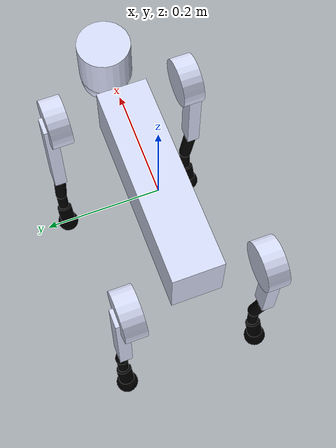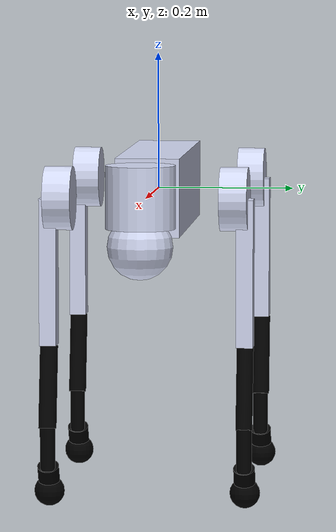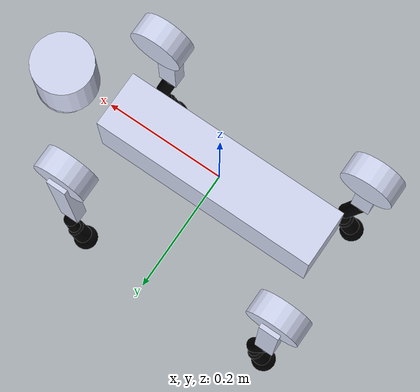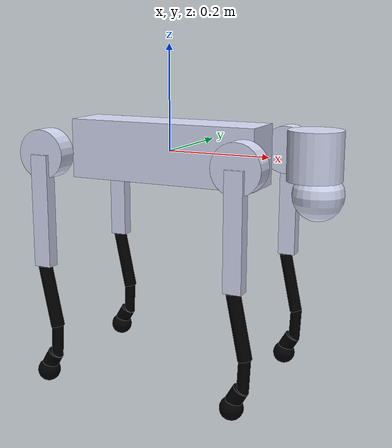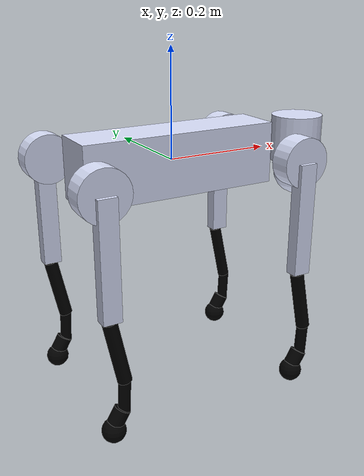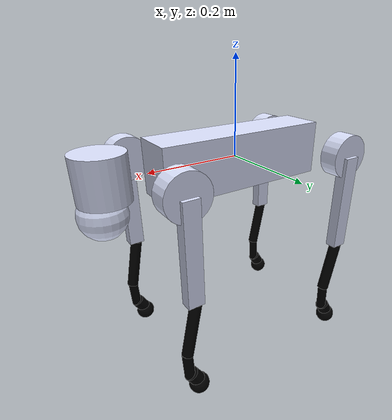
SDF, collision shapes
<sdf version='1.11'>
  <model name='go2_description'>
    <link name='base'>
      <inertial>
        <pose>0.020153063882401429 0 -0.0051089553510097526 0 0 0</pose>
        <mass>7.2790000000000017</mass>
        <inertia>
          <ixx>0.025737618948512481</ixx>
          <ixy>0.00012166</ixy>
          <ixz>0.001534235398809762</ixz>
          <iyy>0.1031209538931058</iyy>
          <iyz>-3.1199999999999999e-05</iyz>
          <izz>0.1128090234445933</izz>
        </inertia>
      </inertial>
      <collision name='base_collision'>
        <pose>0 0 0 0 0 0</pose>
        <geometry>
          <box>
            <size>0.37619999999999998 0.0935 0.114</size>
          </box>
        </geometry>
      </collision>
      <collision name='base_fixed_joint_lump__Head_upper_collision_1'>
        <pose>0.28499999999999998 0 0.01 0 0 0</pose>
        <geometry>
          <cylinder>
            <length>0.089999999999999997</length>
            <radius>0.050000000000000003</radius>
          </cylinder>
        </geometry>
      </collision>
      <collision name='base_fixed_joint_lump__Head_lower_collision_2'>
        <pose>0.29299999999999998 0 -0.059999999999999998 0 0 0</pose>
        <geometry>
          <sphere>
            <radius>0.047</radius>
          </sphere>
        </geometry>
      </collision>
      <visual name='base_visual'>
        <pose>0 0 0 0 0 0</pose>
        <geometry>
          <mesh>
            <scale>1 1 1</scale>
            <uri>model://go2_description/dae/base.dae</uri>
          </mesh>
        </geometry>
        <material>
          <diffuse>0.839631855 0.86553216 0.967837751 1</diffuse>
          <ambient>0.839631855 0.86553216 0.967837751 1</ambient>
        </material>
      </visual>
      <sensor name='lidar' type='gpu_lidar'>
        <pose>0.28945 0 -0.046825 0 2.8782 0</pose>
        <topic>lidar</topic>
        <gz_frame_id>radar</gz_frame_id>
        <update_rate>10</update_rate>
        <always_on>1</always_on>
        <lidar>
          <scan>
            <horizontal>
              <samples>360</samples>
              <resolution>1</resolution>
              <min_angle>-3.14159</min_angle>
              <max_angle>3.14159</max_angle>
            </horizontal>
            <vertical>
              <samples>18</samples>
              <resolution>1</resolution>
              <min_angle>0</min_angle>
              <max_angle>1.5708</max_angle>
            </vertical>
          </scan>
          <range>
            <min>0.05</min>
            <max>30</max>
            <resolution>0.01</resolution>
          </range>
          <noise>
            <type>gaussian</type>
            <mean>0</mean>
            <stddev>0.01</stddev>
          </noise>
        </lidar>
      </sensor>
      <sensor name='front_camera' type='camera'>
        <pose>0.32715 0 0.04297 0 0 0</pose>
        <topic>front_camera/image</topic>
        <gz_frame_id>front_camera</gz_frame_id>
        <update_rate>15</update_rate>
        <always_on>1</always_on>
        <camera>
          <horizontal_fov>1.5</horizontal_fov>
          <image>
            <width>640</width>
            <height>480</height>
            <format>R8G8B8</format>
          </image>
          <clip>
            <near>0.05</near>
            <far>30</far>
          </clip>
        </camera>
      </sensor>
    </link>
    <joint name='FL_hip_joint' type='revolute'>
      <pose relative_to='base'>0.19339999999999999 0.0465 0 0 0 0</pose>
      <parent>base</parent>
      <child>FL_hip</child>
      <axis>
        <xyz>1 0 0</xyz>
        <limit>
          <lower>-1.0471999999999999</lower>
          <upper>1.0471999999999999</upper>
          <effort>45.43</effort>
          <velocity>30.100000000000001</velocity>
        </limit>
        <dynamics><damping>0.0</damping><friction>0.01</friction>
          <spring_reference>0</spring_reference>
          <spring_stiffness>0</spring_stiffness>
        </dynamics>
      </axis>
    </joint>
    <link name='FL_hip'>
      <pose relative_to='FL_hip_joint'>0 0 0 0 0 0</pose>
      <inertial>
        <pose>-0.0047734028683181226 0.00169748370273794 -9.2816166883963517e-05 0 0 0</pose>
        <mass>0.76700000000000002</mass>
        <inertia>
          <ixx>0.00053999151781062584</ixx>
          <ixy>-2.1220993324641449e-06</ixy>
          <ixz>1.0653925501955671e-06</ixz>
          <iyy>0.00099813696478559337</iyy>
          <iyz>-1.4027352647979141e-06</iyz>
          <izz>0.00065828474786205991</izz>
        </inertia>
      </inertial>
      <collision name='FL_hip_collision'>
        <pose>0 0.080000000000000002 0 1.5707963267948959 0 0</pose>
        <geometry>
          <cylinder>
            <length>0.040000000000000001</length>
            <radius>0.045999999999999999</radius>
          </cylinder>
        </geometry>
      </collision>
      <visual name='FL_hip_visual'>
        <pose>0 0 0 0 0 0</pose>
        <geometry>
          <mesh>
            <scale>1 1 1</scale>
            <uri>model://go2_description/dae/hip.dae</uri>
          </mesh>
        </geometry>
        <material>
          <diffuse>0.839631855 0.86553216 0.967837751 1</diffuse>
          <ambient>0.839631855 0.86553216 0.967837751 1</ambient>
        </material>
      </visual>
    </link>
    <joint name='FL_thigh_joint' type='revolute'>
      <pose relative_to='FL_hip'>0 0.095500000000000002 0 0 0 0</pose>
      <parent>FL_hip</parent>
      <child>FL_thigh</child>
      <axis>
        <xyz>0 1 0</xyz>
        <limit>
          <lower>-1.5708</lower>
          <upper>3.4906999999999999</upper>
          <effort>45.43</effort>
          <velocity>30.100000000000001</velocity>
        </limit>
        <dynamics><damping>0.0</damping><friction>0.01</friction>
          <spring_reference>0</spring_reference>
          <spring_stiffness>0</spring_stiffness>
        </dynamics>
      </axis>
    </joint>
    <link name='FL_thigh'>
      <pose relative_to='FL_thigh_joint'>0 0 0 0 0 0</pose>
      <inertial>
        <pose>-0.003471780821917808 -0.02302074939564867 -0.03035487510072523 0 0 0</pose>
        <mass>1.2410000000000001</mass>
        <inertia>
          <ixx>0.0059963333412087023</ixx>
          <ixy>9.0305334356164388e-05</ixy>
          <ixz>-0.00029910392372602731</ixz>
          <iyy>0.0060013394099700237</iyy>
          <iyz>0.00083515091803384382</iyz>
          <izz>0.0010991471651674461</izz>
        </inertia>
      </inertial>
      <collision name='FL_thigh_collision'>
        <pose>0 0 -0.1065 0 1.5707963267948966 0</pose>
        <geometry>
          <box>
            <size>0.21299999999999999 0.024500000000000001 0.034000000000000002</size>
          </box>
        </geometry>
      </collision>
      <visual name='FL_thigh_visual'>
        <pose>0 0 0 0 0 0</pose>
        <geometry>
          <mesh>
            <scale>1 1 1</scale>
            <uri>model://go2_description/dae/thigh.dae</uri>
          </mesh>
        </geometry>
        <material>
          <diffuse>0.839631855 0.86553216 0.967837751 1</diffuse>
          <ambient>0.839631855 0.86553216 0.967837751 1</ambient>
        </material>
      </visual>
    </link>
    <joint name='FL_calf_joint' type='revolute'>
      <pose relative_to='FL_thigh'>0 0 -0.21299999999999999 0 0 0</pose>
      <parent>FL_thigh</parent>
      <child>FL_calf</child>
      <axis>
        <xyz>0 1 0</xyz>
        <limit>
          <lower>-2.7227000000000001</lower>
          <upper>0.05</upper>
          <effort>45.43</effort>
          <velocity>15.699999999999999</velocity>
        </limit>
        <dynamics><damping>0.0</damping><friction>0.01</friction>
          <spring_reference>0</spring_reference>
          <spring_stiffness>0</spring_stiffness>
        </dynamics>
      </axis>
    </joint>
    <link name='FL_calf'>
      <pose relative_to='FL_calf_joint'>0 0 0 0 0 0</pose>
      <inertial>
        <pose>0.0043501030927835041 -0.00077396907216494828 -0.13520618556701031 0 0 0</pose>
        <mass>0.19400000000000001</mass>
        <inertia>
          <ixx>0.001394581937371134</ixx>
          <ixy>5.0965402061855686e-07</ixy>
          <ixz>1.4759587628868399e-07</ixz>
          <iyy>0.001415505295175258</iyy>
          <iyz>1.1313958762886591e-05</iyz>
          <izz>4.3483727391752568e-05</izz>
        </inertia>
      </inertial>
      <collision name='FL_calf_collision'>
        <pose>0.0080000000000000002 0 -0.059999999999999998 0 -0.20999999999999999 0</pose>
        <geometry>
          <cylinder>
            <length>0.12</length>
            <radius>0.012</radius>
          </cylinder>
        </geometry>
      </collision>
      <collision name='FL_calflower_collision_1'>
        <pose>0.02 0 -0.14799999999999999 0 0.050000000000000003 0</pose>
        <geometry>
          <cylinder>
            <length>0.065000000000000002</length>
            <radius>0.010999999999999999</radius>
          </cylinder>
        </geometry>
      </collision>
      <collision name='FL_calflower1_collision_2'>
        <pose>0.0080133306252232039 0 -0.18745021872309189 0 0.53000000000000014 0</pose>
        <geometry>
          <cylinder>
            <length>0.029999999999999999</length>
            <radius>0.0155</radius>
          </cylinder>
        </geometry>
      </collision>
      <collision name='FL_calf_fixed_joint_lump__FL_foot_collision_3'>
        <pose>-0.002 0 -0.21299999999999999 0 0 0</pose>
        <geometry>
          <sphere>
            <radius>0.021999999999999999</radius>
          </sphere>
        </geometry>
      </collision>
      <visual name='FL_calf_visual'>
        <pose>0 0 0 0 0 0</pose>
        <geometry>
          <mesh>
            <scale>1 1 1</scale>
            <uri>model://go2_description/dae/calf.dae</uri>
          </mesh>
        </geometry>
        <material>
          <diffuse>0 0 0 1</diffuse>
          <ambient>0 0 0 1</ambient>
        </material>
      </visual>
      <visual name='FL_calf_fixed_joint_lump__FL_foot_visual_1'>
        <pose>0 0 -0.21299999999999999 0 0 0</pose>
        <geometry>
          <mesh>
            <scale>1 1 1</scale>
            <uri>model://go2_description/dae/foot.dae</uri>
          </mesh>
        </geometry>
        <material>
          <diffuse>0 0 0 1</diffuse>
          <ambient>0 0 0 1</ambient>
        </material>
      </visual>
    </link>
    <joint name='FR_hip_joint' type='revolute'>
      <pose relative_to='base'>0.19339999999999999 -0.0465 0 0 0 0</pose>
      <parent>base</parent>
      <child>FR_hip</child>
      <axis>
        <xyz>1 0 0</xyz>
        <limit>
          <lower>-1.0471999999999999</lower>
          <upper>1.0471999999999999</upper>
          <effort>45.43</effort>
          <velocity>30.100000000000001</velocity>
        </limit>
        <dynamics><damping>0.0</damping><friction>0.01</friction>
          <spring_reference>0</spring_reference>
          <spring_stiffness>0</spring_stiffness>
        </dynamics>
      </axis>
    </joint>
    <link name='FR_hip'>
      <pose relative_to='FR_hip_joint'>0 0 0 0 0 0</pose>
      <inertial>
        <pose>-0.0047734028683181226 -0.00169748370273794 -9.2816166883963517e-05 0 0 0</pose>
        <mass>0.76700000000000002</mass>
        <inertia>
          <ixx>0.00053999151781062584</ixx>
          <ixy>2.1220993324641449e-06</ixy>
          <ixz>1.0653925501955671e-06</ixz>
          <iyy>0.00099813696478559337</iyy>
          <iyz>1.4027352647979141e-06</iyz>
          <izz>0.00065828474786205991</izz>
        </inertia>
      </inertial>
      <collision name='FR_hip_collision'>
        <pose>0 -0.080000000000000002 0 1.5707963267948959 0 0</pose>
        <geometry>
          <cylinder>
            <length>0.040000000000000001</length>
            <radius>0.045999999999999999</radius>
          </cylinder>
        </geometry>
      </collision>
      <visual name='FR_hip_visual'>
        <pose>0 0 0 3.1415000000000002 0 0</pose>
        <geometry>
          <mesh>
            <scale>1 1 1</scale>
            <uri>model://go2_description/dae/hip.dae</uri>
          </mesh>
        </geometry>
        <material>
          <diffuse>0.839631855 0.86553216 0.967837751 1</diffuse>
          <ambient>0.839631855 0.86553216 0.967837751 1</ambient>
        </material>
      </visual>
    </link>
    <joint name='FR_thigh_joint' type='revolute'>
      <pose relative_to='FR_hip'>0 -0.095500000000000002 0 0 0 0</pose>
      <parent>FR_hip</parent>
      <child>FR_thigh</child>
      <axis>
        <xyz>0 1 0</xyz>
        <limit>
          <lower>-1.5708</lower>
          <upper>3.4906999999999999</upper>
          <effort>45.43</effort>
          <velocity>30.100000000000001</velocity>
        </limit>
        <dynamics><damping>0.0</damping><friction>0.01</friction>
          <spring_reference>0</spring_reference>
          <spring_stiffness>0</spring_stiffness>
        </dynamics>
      </axis>
    </joint>
    <link name='FR_thigh'>
      <pose relative_to='FR_thigh_joint'>0 0 0 0 0 0</pose>
      <inertial>
        <pose>-0.003471780821917808 0.02302074939564867 -0.03035487510072523 0 0 0</pose>
        <mass>1.2410000000000001</mass>
        <inertia>
          <ixx>0.0059963333412087023</ixx>
          <ixy>-9.0305334356164388e-05</ixy>
          <ixz>-0.00029910392372602731</ixz>
          <iyy>0.0060013394099700237</iyy>
          <iyz>-0.00083515091803384382</iyz>
          <izz>0.0010991471651674461</izz>
        </inertia>
      </inertial>
      <collision name='FR_thigh_collision'>
        <pose>0 0 -0.1065 0 1.5707963267948966 0</pose>
        <geometry>
          <box>
            <size>0.21299999999999999 0.024500000000000001 0.034000000000000002</size>
          </box>
        </geometry>
      </collision>
      <visual name='FR_thigh_visual'>
        <pose>0 0 0 0 0 0</pose>
        <geometry>
          <mesh>
            <scale>1 1 1</scale>
            <uri>model://go2_description/dae/thigh_mirror.dae</uri>
          </mesh>
        </geometry>
        <material>
          <diffuse>0.839631855 0.86553216 0.967837751 1</diffuse>
          <ambient>0.839631855 0.86553216 0.967837751 1</ambient>
        </material>
      </visual>
    </link>
    <joint name='FR_calf_joint' type='revolute'>
      <pose relative_to='FR_thigh'>0 0 -0.21299999999999999 0 0 0</pose>
      <parent>FR_thigh</parent>
      <child>FR_calf</child>
      <axis>
        <xyz>0 1 0</xyz>
        <limit>
          <lower>-2.7227000000000001</lower>
          <upper>0.05</upper>
          <effort>45.43</effort>
          <velocity>15.699999999999999</velocity>
        </limit>
        <dynamics><damping>0.0</damping><friction>0.01</friction>
          <spring_reference>0</spring_reference>
          <spring_stiffness>0</spring_stiffness>
        </dynamics>
      </axis>
    </joint>
    <link name='FR_calf'>
      <pose relative_to='FR_calf_joint'>0 0 0 0 0 0</pose>
      <inertial>
        <pose>0.0043501030927835041 0.00077396907216494828 -0.13520618556701031 0 0 0</pose>
        <mass>0.19400000000000001</mass>
        <inertia>
          <ixx>0.001394581937371134</ixx>
          <ixy>-5.0965402061855686e-07</ixy>
          <ixz>1.4759587628868399e-07</ixz>
          <iyy>0.001415505295175258</iyy>
          <iyz>-1.1313958762886591e-05</iyz>
          <izz>4.3483727391752568e-05</izz>
        </inertia>
      </inertial>
      <collision name='FR_calf_collision'>
        <pose>0.01 0 -0.059999999999999998 0 -0.20000000000000004 0</pose>
        <geometry>
          <cylinder>
            <length>0.12</length>
            <radius>0.012999999999999999</radius>
          </cylinder>
        </geometry>
      </collision>
      <collision name='FR_calflower_collision_1'>
        <pose>0.02 0 -0.14799999999999999 0 0.050000000000000003 0</pose>
        <geometry>
          <cylinder>
            <length>0.065000000000000002</length>
            <radius>0.010999999999999999</radius>
          </cylinder>
        </geometry>
      </collision>
      <collision name='FR_calflower1_collision_2'>
        <pose>0.0080133306252232039 0 -0.18745021872309189 0 0.53000000000000014 0</pose>
        <geometry>
          <cylinder>
            <length>0.029999999999999999</length>
            <radius>0.0155</radius>
          </cylinder>
        </geometry>
      </collision>
      <collision name='FR_calf_fixed_joint_lump__FR_foot_collision_3'>
        <pose>-0.002 0 -0.21299999999999999 0 0 0</pose>
        <geometry>
          <sphere>
            <radius>0.021999999999999999</radius>
          </sphere>
        </geometry>
      </collision>
      <visual name='FR_calf_visual'>
        <pose>0 0 0 0 0 0</pose>
        <geometry>
          <mesh>
            <scale>1 1 1</scale>
            <uri>model://go2_description/dae/calf_mirror.dae</uri>
          </mesh>
        </geometry>
        <material>
          <diffuse>0 0 0 1</diffuse>
          <ambient>0 0 0 1</ambient>
        </material>
      </visual>
      <visual name='FR_calf_fixed_joint_lump__FR_foot_visual_1'>
        <pose>0 0 -0.21299999999999999 0 0 0</pose>
        <geometry>
          <mesh>
            <scale>1 1 1</scale>
            <uri>model://go2_description/dae/foot.dae</uri>
          </mesh>
        </geometry>
        <material>
          <diffuse>0 0 0 1</diffuse>
          <ambient>0 0 0 1</ambient>
        </material>
      </visual>
    </link>
    <joint name='RL_hip_joint' type='revolute'>
      <pose relative_to='base'>-0.19339999999999999 0.0465 0 0 0 0</pose>
      <parent>base</parent>
      <child>RL_hip</child>
      <axis>
        <xyz>1 0 0</xyz>
        <limit>
          <lower>-1.0471999999999999</lower>
          <upper>1.0471999999999999</upper>
          <effort>45.43</effort>
          <velocity>30.100000000000001</velocity>
        </limit>
        <dynamics><damping>0.0</damping><friction>0.01</friction>
          <spring_reference>0</spring_reference>
          <spring_stiffness>0</spring_stiffness>
        </dynamics>
      </axis>
    </joint>
    <link name='RL_hip'>
      <pose relative_to='RL_hip_joint'>0 0 0 0 0 0</pose>
      <inertial>
        <pose>0.0047734028683181226 0.00169748370273794 -9.2816166883963517e-05 0 0 0</pose>
        <mass>0.76700000000000002</mass>
        <inertia>
          <ixx>0.00053999151781062584</ixx>
          <ixy>2.1220993324641449e-06</ixy>
          <ixz>-1.0653925501955671e-06</ixz>
          <iyy>0.00099813696478559337</iyy>
          <iyz>-1.4027352647979141e-06</iyz>
          <izz>0.00065828474786205991</izz>
        </inertia>
      </inertial>
      <collision name='RL_hip_collision'>
        <pose>0 0.080000000000000002 0 1.5707963267948959 0 0</pose>
        <geometry>
          <cylinder>
            <length>0.040000000000000001</length>
            <radius>0.045999999999999999</radius>
          </cylinder>
        </geometry>
      </collision>
      <visual name='RL_hip_visual'>
        <pose>0 0 0 3.1415926535897931 9.265358979305727e-05 3.1415926535897931</pose>
        <geometry>
          <mesh>
            <scale>1 1 1</scale>
            <uri>model://go2_description/dae/hip.dae</uri>
          </mesh>
        </geometry>
        <material>
          <diffuse>0.839631855 0.86553216 0.967837751 1</diffuse>
          <ambient>0.839631855 0.86553216 0.967837751 1</ambient>
        </material>
      </visual>
    </link>
    <joint name='RL_thigh_joint' type='revolute'>
      <pose relative_to='RL_hip'>0 0.095500000000000002 0 0 0 0</pose>
      <parent>RL_hip</parent>
      <child>RL_thigh</child>
      <axis>
        <xyz>0 1 0</xyz>
        <limit>
          <lower>-0.52359999999999995</lower>
          <upper>4.5378999999999996</upper>
          <effort>45.43</effort>
          <velocity>30.100000000000001</velocity>
        </limit>
        <dynamics><damping>0.0</damping><friction>0.01</friction>
          <spring_reference>0</spring_reference>
          <spring_stiffness>0</spring_stiffness>
        </dynamics>
      </axis>
    </joint>
    <link name='RL_thigh'>
      <pose relative_to='RL_thigh_joint'>0 0 0 0 0 0</pose>
      <inertial>
        <pose>-0.003471780821917808 -0.02302074939564867 -0.03035487510072523 0 0 0</pose>
        <mass>1.2410000000000001</mass>
        <inertia>
          <ixx>0.0059963333412087023</ixx>
          <ixy>9.0305334356164388e-05</ixy>
          <ixz>-0.00029910392372602731</ixz>
          <iyy>0.0060013394099700237</iyy>
          <iyz>0.00083515091803384382</iyz>
          <izz>0.0010991471651674461</izz>
        </inertia>
      </inertial>
      <collision name='RL_thigh_collision'>
        <pose>0 0 -0.1065 0 1.5707963267948966 0</pose>
        <geometry>
          <box>
            <size>0.21299999999999999 0.024500000000000001 0.034000000000000002</size>
          </box>
        </geometry>
      </collision>
      <visual name='RL_thigh_visual'>
        <pose>0 0 0 0 0 0</pose>
        <geometry>
          <mesh>
            <scale>1 1 1</scale>
            <uri>model://go2_description/dae/thigh.dae</uri>
          </mesh>
        </geometry>
        <material>
          <diffuse>0.839631855 0.86553216 0.967837751 1</diffuse>
          <ambient>0.839631855 0.86553216 0.967837751 1</ambient>
        </material>
      </visual>
    </link>
    <joint name='RL_calf_joint' type='revolute'>
      <pose relative_to='RL_thigh'>0 0 -0.21299999999999999 0 0 0</pose>
      <parent>RL_thigh</parent>
      <child>RL_calf</child>
      <axis>
        <xyz>0 1 0</xyz>
        <limit>
          <lower>-2.7227000000000001</lower>
          <upper>0.05</upper>
          <effort>45.43</effort>
          <velocity>15.699999999999999</velocity>
        </limit>
        <dynamics><damping>0.0</damping><friction>0.01</friction>
          <spring_reference>0</spring_reference>
          <spring_stiffness>0</spring_stiffness>
        </dynamics>
      </axis>
    </joint>
    <link name='RL_calf'>
      <pose relative_to='RL_calf_joint'>0 0 0 0 0 0</pose>
      <inertial>
        <pose>0.0043501030927835041 -0.00077396907216494828 -0.13520618556701031 0 0 0</pose>
        <mass>0.19400000000000001</mass>
        <inertia>
          <ixx>0.001394581937371134</ixx>
          <ixy>5.0965402061855686e-07</ixy>
          <ixz>1.4759587628868399e-07</ixz>
          <iyy>0.001415505295175258</iyy>
          <iyz>1.1313958762886591e-05</iyz>
          <izz>4.3483727391752568e-05</izz>
        </inertia>
      </inertial>
      <collision name='RL_calf_collision'>
        <pose>0.01 0 -0.059999999999999998 0 -0.20000000000000004 0</pose>
        <geometry>
          <cylinder>
            <length>0.12</length>
            <radius>0.012999999999999999</radius>
          </cylinder>
        </geometry>
      </collision>
      <collision name='RL_calflower_collision_1'>
        <pose>0.02 0 -0.14799999999999999 0 0.050000000000000003 0</pose>
        <geometry>
          <cylinder>
            <length>0.065000000000000002</length>
            <radius>0.010999999999999999</radius>
          </cylinder>
        </geometry>
      </collision>
      <collision name='RL_calflower1_collision_2'>
        <pose>0.0080133306252232039 0 -0.18745021872309189 0 0.53000000000000014 0</pose>
        <geometry>
          <cylinder>
            <length>0.029999999999999999</length>
            <radius>0.0155</radius>
          </cylinder>
        </geometry>
      </collision>
      <collision name='RL_calf_fixed_joint_lump__RL_foot_collision_3'>
        <pose>-0.002 0 -0.21299999999999999 0 0 0</pose>
        <geometry>
          <sphere>
            <radius>0.021999999999999999</radius>
          </sphere>
        </geometry>
      </collision>
      <visual name='RL_calf_visual'>
        <pose>0 0 0 0 0 0</pose>
        <geometry>
          <mesh>
            <scale>1 1 1</scale>
            <uri>model://go2_description/dae/calf.dae</uri>
          </mesh>
        </geometry>
        <material>
          <diffuse>0 0 0 1</diffuse>
          <ambient>0 0 0 1</ambient>
        </material>
      </visual>
      <visual name='RL_calf_fixed_joint_lump__RL_foot_visual_1'>
        <pose>0 0 -0.21299999999999999 0 0 0</pose>
        <geometry>
          <mesh>
            <scale>1 1 1</scale>
            <uri>model://go2_description/dae/foot.dae</uri>
          </mesh>
        </geometry>
        <material>
          <diffuse>0 0 0 1</diffuse>
          <ambient>0 0 0 1</ambient>
        </material>
      </visual>
    </link>
    <joint name='RR_hip_joint' type='revolute'>
      <pose relative_to='base'>-0.19339999999999999 -0.0465 0 0 0 0</pose>
      <parent>base</parent>
      <child>RR_hip</child>
      <axis>
        <xyz>1 0 0</xyz>
        <limit>
          <lower>-1.0471999999999999</lower>
          <upper>1.0471999999999999</upper>
          <effort>45.43</effort>
          <velocity>30.100000000000001</velocity>
        </limit>
        <dynamics><damping>0.0</damping><friction>0.01</friction>
          <spring_reference>0</spring_reference>
          <spring_stiffness>0</spring_stiffness>
        </dynamics>
      </axis>
    </joint>
    <link name='RR_hip'>
      <pose relative_to='RR_hip_joint'>0 0 0 0 0 0</pose>
      <inertial>
        <pose>0.0047734028683181226 -0.00169748370273794 -9.2816166883963517e-05 0 0 0</pose>
        <mass>0.76700000000000002</mass>
        <inertia>
          <ixx>0.00053999151781062584</ixx>
          <ixy>-2.1220993324641449e-06</ixy>
          <ixz>-1.0653925501955671e-06</ixz>
          <iyy>0.00099813696478559337</iyy>
          <iyz>1.4027352647979141e-06</iyz>
          <izz>0.00065828474786205991</izz>
        </inertia>
      </inertial>
      <collision name='RR_hip_collision'>
        <pose>0 -0.080000000000000002 0 1.5707963267948959 0 0</pose>
        <geometry>
          <cylinder>
            <length>0.040000000000000001</length>
            <radius>0.045999999999999999</radius>
          </cylinder>
        </geometry>
      </collision>
      <visual name='RR_hip_visual'>
        <pose>0 0 0 -9.2653589793057257e-05 9.2653589793057284e-05 3.1415926535897931</pose>
        <geometry>
          <mesh>
            <scale>1 1 1</scale>
            <uri>model://go2_description/dae/hip.dae</uri>
          </mesh>
        </geometry>
        <material>
          <diffuse>0.839631855 0.86553216 0.967837751 1</diffuse>
          <ambient>0.839631855 0.86553216 0.967837751 1</ambient>
        </material>
      </visual>
    </link>
    <joint name='RR_thigh_joint' type='revolute'>
      <pose relative_to='RR_hip'>0 -0.095500000000000002 0 0 0 0</pose>
      <parent>RR_hip</parent>
      <child>RR_thigh</child>
      <axis>
        <xyz>0 1 0</xyz>
        <limit>
          <lower>-0.52359999999999995</lower>
          <upper>4.5378999999999996</upper>
          <effort>45.43</effort>
          <velocity>30.100000000000001</velocity>
        </limit>
        <dynamics><damping>0.0</damping><friction>0.01</friction>
          <spring_reference>0</spring_reference>
          <spring_stiffness>0</spring_stiffness>
        </dynamics>
      </axis>
    </joint>
    <link name='RR_thigh'>
      <pose relative_to='RR_thigh_joint'>0 0 0 0 0 0</pose>
      <inertial>
        <pose>-0.003471780821917808 0.02302074939564867 -0.03035487510072523 0 0 0</pose>
        <mass>1.2410000000000001</mass>
        <inertia>
          <ixx>0.0059963333412087023</ixx>
          <ixy>-9.0305334356164388e-05</ixy>
          <ixz>-0.00029910392372602731</ixz>
          <iyy>0.0060013394099700237</iyy>
          <iyz>-0.00083515091803384382</iyz>
          <izz>0.0010991471651674461</izz>
        </inertia>
      </inertial>
      <collision name='RR_thigh_collision'>
        <pose>0 0 -0.1065 0 1.5707963267948966 0</pose>
        <geometry>
          <box>
            <size>0.21299999999999999 0.024500000000000001 0.034000000000000002</size>
          </box>
        </geometry>
      </collision>
      <visual name='RR_thigh_visual'>
        <pose>0 0 0 0 0 0</pose>
        <geometry>
          <mesh>
            <scale>1 1 1</scale>
            <uri>model://go2_description/dae/thigh_mirror.dae</uri>
          </mesh>
        </geometry>
        <material>
          <diffuse>0.839631855 0.86553216 0.967837751 1</diffuse>
          <ambient>0.839631855 0.86553216 0.967837751 1</ambient>
        </material>
      </visual>
    </link>
    <joint name='RR_calf_joint' type='revolute'>
      <pose relative_to='RR_thigh'>0 0 -0.21299999999999999 0 0 0</pose>
      <parent>RR_thigh</parent>
      <child>RR_calf</child>
      <axis>
        <xyz>0 1 0</xyz>
        <limit>
          <lower>-2.7227000000000001</lower>
          <upper>0.05</upper>
          <effort>45.43</effort>
          <velocity>15.699999999999999</velocity>
        </limit>
        <dynamics><damping>0.0</damping><friction>0.01</friction>
          <spring_reference>0</spring_reference>
          <spring_stiffness>0</spring_stiffness>
        </dynamics>
      </axis>
    </joint>
    <link name='RR_calf'>
      <pose relative_to='RR_calf_joint'>0 0 0 0 0 0</pose>
      <inertial>
        <pose>0.0043501030927835041 0.00077396907216494828 -0.13520618556701031 0 0 0</pose>
        <mass>0.19400000000000001</mass>
        <inertia>
          <ixx>0.001394581937371134</ixx>
          <ixy>-5.0965402061855686e-07</ixy>
          <ixz>1.4759587628868399e-07</ixz>
          <iyy>0.001415505295175258</iyy>
          <iyz>-1.1313958762886591e-05</iyz>
          <izz>4.3483727391752568e-05</izz>
        </inertia>
      </inertial>
      <collision name='RR_calf_collision'>
        <pose>0.01 0 -0.059999999999999998 0 -0.20000000000000004 0</pose>
        <geometry>
          <cylinder>
            <length>0.12</length>
            <radius>0.012999999999999999</radius>
          </cylinder>
        </geometry>
      </collision>
      <collision name='RR_calflower_collision_1'>
        <pose>0.02 0 -0.14799999999999999 0 0.050000000000000003 0</pose>
        <geometry>
          <cylinder>
            <length>0.065000000000000002</length>
            <radius>0.010999999999999999</radius>
          </cylinder>
        </geometry>
      </collision>
      <collision name='RR_calflower1_collision_2'>
        <pose>0.0080133306252232039 0 -0.18745021872309189 0 0.53000000000000014 0</pose>
        <geometry>
          <cylinder>
            <length>0.029999999999999999</length>
            <radius>0.0155</radius>
          </cylinder>
        </geometry>
      </collision>
      <collision name='RR_calf_fixed_joint_lump__RR_foot_collision_3'>
        <pose>-0.002 0 -0.21299999999999999 0 0 0</pose>
        <geometry>
          <sphere>
            <radius>0.021999999999999999</radius>
          </sphere>
        </geometry>
      </collision>
      <visual name='RR_calf_visual'>
        <pose>0 0 0 0 0 0</pose>
        <geometry>
          <mesh>
            <scale>1 1 1</scale>
            <uri>model://go2_description/dae/calf_mirror.dae</uri>
          </mesh>
        </geometry>
        <material>
          <diffuse>0 0 0 1</diffuse>
          <ambient>0 0 0 1</ambient>
        </material>
      </visual>
      <visual name='RR_calf_fixed_joint_lump__RR_foot_visual_1'>
        <pose>0 0 -0.21299999999999999 0 0 0</pose>
        <geometry>
          <mesh>
            <scale>1 1 1</scale>
            <uri>model://go2_description/dae/foot.dae</uri>
          </mesh>
        </geometry>
        <material>
          <diffuse>0 0 0 1</diffuse>
          <ambient>0 0 0 1</ambient>
        </material>
      </visual>
    </link>
    <frame name='FL_hip_rotor_joint' attached_to='base'>
      <pose>0.11215 0.04675 0 0 0 0</pose>
    </frame>
    <frame name='FL_hip_rotor' attached_to='FL_hip_rotor_joint'>
      <pose>0 0 0 0 0 0</pose>
    </frame>
    <frame name='FR_hip_rotor_joint' attached_to='base'>
      <pose>0.11215 -0.04675 0 0 0 0</pose>
    </frame>
    <frame name='FR_hip_rotor' attached_to='FR_hip_rotor_joint'>
      <pose>0 0 0 0 0 0</pose>
    </frame>
    <frame name='Head_lower_joint' attached_to='Head_upper'>
      <pose>0.0080000000000000002 0 -0.070000000000000007 0 0 0</pose>
    </frame>
    <frame name='Head_lower' attached_to='Head_lower_joint'>
      <pose>0 0 0 0 0 0</pose>
    </frame>
    <frame name='Head_upper_joint' attached_to='base'>
      <pose>0.28499999999999998 0 0.01 0 0 0</pose>
    </frame>
    <frame name='Head_upper' attached_to='Head_upper_joint'>
      <pose>0 0 0 0 0 0</pose>
    </frame>
    <frame name='RL_hip_rotor_joint' attached_to='base'>
      <pose>-0.11215 0.04675 0 0 0 0</pose>
    </frame>
    <frame name='RL_hip_rotor' attached_to='RL_hip_rotor_joint'>
      <pose>0 0 0 0 0 0</pose>
    </frame>
    <frame name='RR_hip_rotor_joint' attached_to='base'>
      <pose>-0.11215 -0.04675 0 0 0 0</pose>
    </frame>
    <frame name='RR_hip_rotor' attached_to='RR_hip_rotor_joint'>
      <pose>0 0 0 0 0 0</pose>
    </frame>
    <frame name='front_camera_joint' attached_to='base'>
      <pose>0.32715 -3.0000000000000001e-05 0.042970000000000001 0 0 0</pose>
    </frame>
    <frame name='front_camera' attached_to='front_camera_joint'>
      <pose>0 0 0 0 0 0</pose>
    </frame>
    <frame name='imu_joint' attached_to='base'>
      <pose>-0.025569999999999999 0 0.042320000000000003 0 0 0</pose>
    </frame>
    <frame name='imu' attached_to='imu_joint'>
      <pose>0 0 0 0 0 0</pose>
    </frame>
    <frame name='radar_joint' attached_to='base'>
      <pose>0.28944999999999999 0 -0.046824999999999999 3.1415926535897931 0.26339265358979325 3.1415926535897931</pose>
    </frame>
    <frame name='radar' attached_to='radar_joint'>
      <pose>0 0 0 0 0 0</pose>
    </frame>
    <frame name='FL_thigh_rotor_joint' attached_to='FL_hip'>
      <pose>0 -0.00014999999999999999 0 0 0 0</pose>
    </frame>
    <frame name='FL_thigh_rotor' attached_to='FL_thigh_rotor_joint'>
      <pose>0 0 0 0 0 0</pose>
    </frame>
    <frame name='FL_calf_rotor_joint' attached_to='FL_thigh'>
      <pose>0 -0.032349999999999997 0 0 0 0</pose>
    </frame>
    <frame name='FL_calf_rotor' attached_to='FL_calf_rotor_joint'>
      <pose>0 0 0 0 0 0</pose>
    </frame>
    <frame name='FL_calflower1_joint' attached_to='FL_calflower'>
      <pose>-0.01 0 -0.040000000000000001 0 0.4800000000000002 0</pose>
    </frame>
    <frame name='FL_calflower1' attached_to='FL_calflower1_joint'>
      <pose>0 0 0 0 0 0</pose>
    </frame>
    <frame name='FL_calflower_joint' attached_to='FL_calf'>
      <pose>0.02 0 -0.14799999999999999 0 0.050000000000000003 0</pose>
    </frame>
    <frame name='FL_calflower' attached_to='FL_calflower_joint'>
      <pose>0 0 0 0 0 0</pose>
    </frame>
    <frame name='FL_foot_joint' attached_to='FL_calf'>
      <pose>0 0 -0.21299999999999999 0 0 0</pose>
    </frame>
    <frame name='FL_foot' attached_to='FL_foot_joint'>
      <pose>0 0 0 0 0 0</pose>
    </frame>
    <frame name='FR_thigh_rotor_joint' attached_to='FR_hip'>
      <pose>0 0.00014999999999999999 0 0 0 0</pose>
    </frame>
    <frame name='FR_thigh_rotor' attached_to='FR_thigh_rotor_joint'>
      <pose>0 0 0 0 0 0</pose>
    </frame>
    <frame name='FR_calf_rotor_joint' attached_to='FR_thigh'>
      <pose>0 0.032349999999999997 0 0 0 0</pose>
    </frame>
    <frame name='FR_calf_rotor' attached_to='FR_calf_rotor_joint'>
      <pose>0 0 0 0 0 0</pose>
    </frame>
    <frame name='FR_calflower1_joint' attached_to='FR_calflower'>
      <pose>-0.01 0 -0.040000000000000001 0 0.4800000000000002 0</pose>
    </frame>
    <frame name='FR_calflower1' attached_to='FR_calflower1_joint'>
      <pose>0 0 0 0 0 0</pose>
    </frame>
    <frame name='FR_calflower_joint' attached_to='FR_calf'>
      <pose>0.02 0 -0.14799999999999999 0 0.050000000000000003 0</pose>
    </frame>
    <frame name='FR_calflower' attached_to='FR_calflower_joint'>
      <pose>0 0 0 0 0 0</pose>
    </frame>
    <frame name='FR_foot_joint' attached_to='FR_calf'>
      <pose>0 0 -0.21299999999999999 0 0 0</pose>
    </frame>
    <frame name='FR_foot' attached_to='FR_foot_joint'>
      <pose>0 0 0 0 0 0</pose>
    </frame>
    <frame name='RL_thigh_rotor_joint' attached_to='RL_hip'>
      <pose>0 -0.00014999999999999999 0 0 0 0</pose>
    </frame>
    <frame name='RL_thigh_rotor' attached_to='RL_thigh_rotor_joint'>
      <pose>0 0 0 0 0 0</pose>
    </frame>
    <frame name='RL_calf_rotor_joint' attached_to='RL_thigh'>
      <pose>0 -0.032349999999999997 0 0 0 0</pose>
    </frame>
    <frame name='RL_calf_rotor' attached_to='RL_calf_rotor_joint'>
      <pose>0 0 0 0 0 0</pose>
    </frame>
    <frame name='RL_calflower1_joint' attached_to='RL_calflower'>
      <pose>-0.01 0 -0.040000000000000001 0 0.4800000000000002 0</pose>
    </frame>
    <frame name='RL_calflower1' attached_to='RL_calflower1_joint'>
      <pose>0 0 0 0 0 0</pose>
    </frame>
    <frame name='RL_calflower_joint' attached_to='RL_calf'>
      <pose>0.02 0 -0.14799999999999999 0 0.050000000000000003 0</pose>
    </frame>
    <frame name='RL_calflower' attached_to='RL_calflower_joint'>
      <pose>0 0 0 0 0 0</pose>
    </frame>
    <frame name='RL_foot_joint' attached_to='RL_calf'>
      <pose>0 0 -0.21299999999999999 0 0 0</pose>
    </frame>
    <frame name='RL_foot' attached_to='RL_foot_joint'>
      <pose>0 0 0 0 0 0</pose>
    </frame>
    <frame name='RR_thigh_rotor_joint' attached_to='RR_hip'>
      <pose>0 0.00014999999999999999 0 0 0 0</pose>
    </frame>
    <frame name='RR_thigh_rotor' attached_to='RR_thigh_rotor_joint'>
      <pose>0 0 0 0 0 0</pose>
    </frame>
    <frame name='RR_calf_rotor_joint' attached_to='RR_thigh'>
      <pose>0 0.032349999999999997 0 0 0 0</pose>
    </frame>
    <frame name='RR_calf_rotor' attached_to='RR_calf_rotor_joint'>
      <pose>0 0 0 0 0 0</pose>
    </frame>
    <frame name='RR_calflower1_joint' attached_to='RR_calflower'>
      <pose>-0.01 0 -0.040000000000000001 0 0.4800000000000002 0</pose>
    </frame>
    <frame name='RR_calflower1' attached_to='RR_calflower1_joint'>
      <pose>0 0 0 0 0 0</pose>
    </frame>
    <frame name='RR_calflower_joint' attached_to='RR_calf'>
      <pose>0.02 0 -0.14799999999999999 0 0.050000000000000003 0</pose>
    </frame>
    <frame name='RR_calflower' attached_to='RR_calflower_joint'>
      <pose>0 0 0 0 0 0</pose>
    </frame>
    <frame name='RR_foot_joint' attached_to='RR_calf'>
      <pose>0 0 -0.21299999999999999 0 0 0</pose>
    </frame>
    <frame name='RR_foot' attached_to='RR_foot_joint'>
      <pose>0 0 0 0 0 0</pose>
    </frame>

    <plugin filename="gz-sim-apply-joint-force-system" name="gz::sim::systems::ApplyJointForce">
      <joint_name>FL_hip_joint</joint_name>
    </plugin>
    <plugin filename="gz-sim-apply-joint-force-system" name="gz::sim::systems::ApplyJointForce">
      <joint_name>FR_hip_joint</joint_name>
    </plugin>
    <plugin filename="gz-sim-apply-joint-force-system" name="gz::sim::systems::ApplyJointForce">
      <joint_name>RL_hip_joint</joint_name>
    </plugin>
    <plugin filename="gz-sim-apply-joint-force-system" name="gz::sim::systems::ApplyJointForce">
      <joint_name>RR_hip_joint</joint_name>
    </plugin>
    <plugin filename="gz-sim-apply-joint-force-system" name="gz::sim::systems::ApplyJointForce">
      <joint_name>FL_thigh_joint</joint_name>
    </plugin>
    <plugin filename="gz-sim-apply-joint-force-system" name="gz::sim::systems::ApplyJointForce">
      <joint_name>FR_thigh_joint</joint_name>
    </plugin>
    <plugin filename="gz-sim-apply-joint-force-system" name="gz::sim::systems::ApplyJointForce">
      <joint_name>RL_thigh_joint</joint_name>
    </plugin>
    <plugin filename="gz-sim-apply-joint-force-system" name="gz::sim::systems::ApplyJointForce">
      <joint_name>RR_thigh_joint</joint_name>
    </plugin>
    <plugin filename="gz-sim-apply-joint-force-system" name="gz::sim::systems::ApplyJointForce">
      <joint_name>FL_calf_joint</joint_name>
    </plugin>
    <plugin filename="gz-sim-apply-joint-force-system" name="gz::sim::systems::ApplyJointForce">
      <joint_name>FR_calf_joint</joint_name>
    </plugin>
    <plugin filename="gz-sim-apply-joint-force-system" name="gz::sim::systems::ApplyJointForce">
      <joint_name>RL_calf_joint</joint_name>
    </plugin>
    <plugin filename="gz-sim-apply-joint-force-system" name="gz::sim::systems::ApplyJointForce">
      <joint_name>RR_calf_joint</joint_name>
    </plugin>
    <plugin filename="gz-sim-joint-state-publisher-system" name="gz::sim::systems::JointStatePublisher">
        <topic>/model/go2/joint_state</topic>
        <update_frequency>1000</update_frequency>
        <joint_name>FL_hip_joint</joint_name>
        <joint_name>FR_hip_joint</joint_name>
        <joint_name>RL_hip_joint</joint_name>
        <joint_name>RR_hip_joint</joint_name>
        <joint_name>FL_thigh_joint</joint_name>
        <joint_name>FR_thigh_joint</joint_name>
        <joint_name>RL_thigh_joint</joint_name>
        <joint_name>RR_thigh_joint</joint_name>
        <joint_name>FL_calf_joint</joint_name>
        <joint_name>FR_calf_joint</joint_name>
        <joint_name>RL_calf_joint</joint_name>
        <joint_name>RR_calf_joint</joint_name>
    </plugin>
    <plugin filename="gz-sim-odometry-publisher-system" name="gz::sim::systems::OdometryPublisher">
      <odom_frame>odom</odom_frame>
      <robot_base_frame>base</robot_base_frame>
      <odom_publish_frequency>1000</odom_publish_frequency>
      <dimensions>3</dimensions>
    </plugin>
    <plugin filename="gz-sim-pose-publisher-system" name="gz::sim::systems::PosePublisher">
      <publish_link_pose>false</publish_link_pose>
      <use_sensor_names>true</use_sensor_names>
      <publish_collision_pose>false</publish_collision_pose>
      <publish_visual_pose>false</publish_visual_pose>
      <publish_nested_model_pose>true</publish_nested_model_pose>
      <update_frequency>50</update_frequency>
    </plugin>
  </model>
</sdf>
